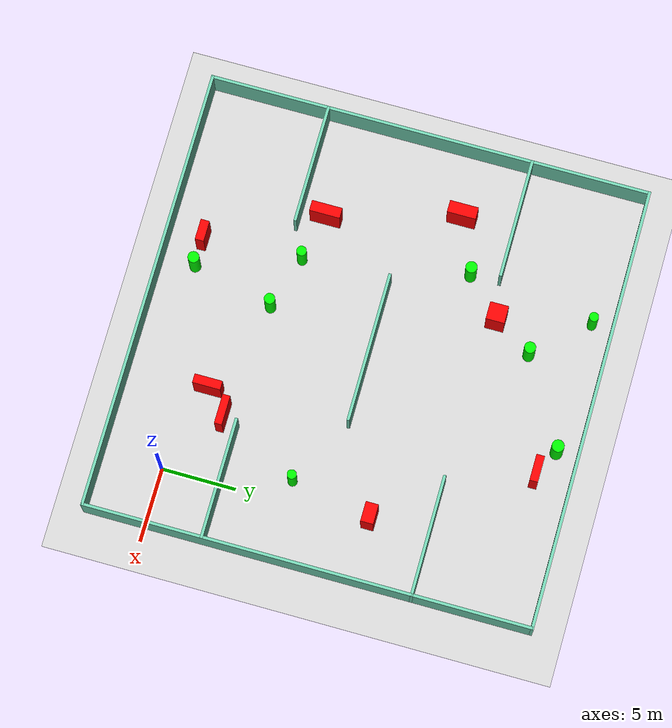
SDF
<sdf version="1.7">
 <world name="default">
  <light name="sun" type="directional">
   <pose>0 0 10 0 -0 0</pose>
   <diffuse>0.8 0.8 0.8 1</diffuse>
   <specular>0.2 0.2 0.2 1</specular>
   <attenuation>
    <range>1000</range>
    <constant>0.9</constant>
    <linear>0.01</linear>
    <quadratic>0.001</quadratic>
   </attenuation>
   <direction>-0.5 0.1 -0.9</direction>
   <spot><inner_angle>0</inner_angle><outer_angle>0</outer_angle><falloff>0</falloff></spot>
  </light>
  <model name="ground_plane">
   <static>1</static>
   <link name="link">
    <collision name="collision">
     <geometry><plane><normal>0 0 1</normal><size>100 100</size></plane></geometry>
     <surface>
      <contact><collide_bitmask>65535</collide_bitmask></contact>
      <friction><ode><mu>100</mu><mu2>50</mu2></ode></friction>
     </surface>
    </collision>
    <visual name="visual">
     <cast_shadows>0</cast_shadows>
     <geometry><plane><normal>0 0 1</normal><size>100 100</size></plane></geometry>
     <material>
      <script><uri>file://media/materials/scripts/gazebo.material</uri><name>Gazebo/Grey</name></script>
     </material>
    </visual>
   </link>
  </model>
  <gravity>0 0 -9.8</gravity>
  <magnetic_field>6e-06 2.3e-05 -4.2e-05</magnetic_field>
  <atmosphere type="adiabatic"/>
  <physics type="ode">
   <max_step_size>0.001</max_step_size>
   <real_time_factor>1</real_time_factor>
   <real_time_update_rate>1000</real_time_update_rate>
  </physics>
  <scene><ambient>0.4 0.4 0.4 1</ambient><background>0.7 0.7 0.7 1</background><shadows>1</shadows></scene>
  <spherical_coordinates>
   <surface_model>EARTH_WGS84</surface_model>
   <latitude_deg>0</latitude_deg>
   <longitude_deg>0</longitude_deg>
   <elevation>0</elevation>
   <heading_deg>0</heading_deg>
  </spherical_coordinates>
  <model name="my_base_walls">
   <link name="Wall_10">
    <collision name="Wall_10_Collision">
     <geometry><box><size>8.2 0.2 2.5</size></box></geometry>
     <pose>0 0 1.25 0 -0 0</pose>
    </collision>
    <visual name="Wall_10_Visual">
     <pose>0 0 1.25 0 -0 0</pose>
     <geometry><box><size>8.2 0.2 2.5</size></box></geometry>
     <material>
      <script><uri>file://media/materials/scripts/gazebo.material</uri><name>Gazebo/Grey</name></script>
      <ambient>0.435294 0.796078 0.67451 1</ambient>
     </material>
     <meta><layer>0</layer></meta>
    </visual>
    <pose>-11 -7 0 0 -0 0</pose>
   </link>
   <link name="Wall_12">
    <collision name="Wall_12_Collision">
     <geometry><box><size>8.2 0.2 2.5</size></box></geometry>
     <pose>0 0 1.25 0 -0 0</pose>
    </collision>
    <visual name="Wall_12_Visual">
     <pose>0 0 1.25 0 -0 0</pose>
     <geometry><box><size>8.2 0.2 2.5</size></box></geometry>
     <material>
      <script><uri>file://media/materials/scripts/gazebo.material</uri><name>Gazebo/Grey</name></script>
      <ambient>0.435294 0.796078 0.67451 1</ambient>
     </material>
     <meta><layer>0</layer></meta>
    </visual>
    <pose>-11 7 0 0 -0 0</pose>
   </link>
   <link name="Wall_14">
    <collision name="Wall_14_Collision">
     <geometry><box><size>8.2 0.2 2.5</size></box></geometry>
     <pose>0 0 1.25 0 -0 0</pose>
    </collision>
    <visual name="Wall_14_Visual">
     <pose>0 0 1.25 0 -0 0</pose>
     <geometry><box><size>8.2 0.2 2.5</size></box></geometry>
     <material>
      <script><uri>file://media/materials/scripts/gazebo.material</uri><name>Gazebo/Grey</name></script>
      <ambient>0.435294 0.796078 0.67451 1</ambient>
     </material>
     <meta><layer>0</layer></meta>
    </visual>
    <pose>11 7 0 0 -0 3.14159</pose>
   </link>
   <link name="Wall_16">
    <collision name="Wall_16_Collision">
     <geometry><box><size>10.2 0.2 2.5</size></box></geometry>
     <pose>0 0 1.25 0 -0 0</pose>
    </collision>
    <visual name="Wall_16_Visual">
     <pose>0 0 1.25 0 -0 0</pose>
     <geometry><box><size>10.2 0.2 2.5</size></box></geometry>
     <material>
      <script><uri>file://media/materials/scripts/gazebo.material</uri><name>Gazebo/Grey</name></script>
      <ambient>0.435294 0.796078 0.67451 1</ambient>
     </material>
     <meta><layer>0</layer></meta>
    </visual>
    <pose>0 0 0 0 -0 3.14159</pose>
   </link>
   <link name="Wall_2">
    <collision name="Wall_2_Collision">
     <geometry><box><size>30.2 0.2 2.5</size></box></geometry>
     <pose>0 0 1.25 0 -0 0</pose>
    </collision>
    <visual name="Wall_2_Visual">
     <pose>0 0 1.25 0 -0 0</pose>
     <geometry><box><size>30.2 0.2 2.5</size></box></geometry>
     <material>
      <script><uri>file://media/materials/scripts/gazebo.material</uri><name>Gazebo/Grey</name></script>
      <ambient>0.435294 0.796078 0.67451 1</ambient>
     </material>
     <meta><layer>0</layer></meta>
    </visual>
    <pose>0 -15 0 0 -0 3.14159</pose>
   </link>
   <link name="Wall_3">
    <collision name="Wall_3_Collision">
     <geometry><box><size>30.2 0.2 2.5</size></box></geometry>
     <pose>0 0 1.25 0 -0 0</pose>
    </collision>
    <visual name="Wall_3_Visual">
     <pose>0 0 1.25 0 -0 0</pose>
     <geometry><box><size>30.2 0.2 2.5</size></box></geometry>
     <material>
      <script><uri>file://media/materials/scripts/gazebo.material</uri><name>Gazebo/Grey</name></script>
      <ambient>0.435294 0.796078 0.67451 1</ambient>
     </material>
     <meta><layer>0</layer></meta>
    </visual>
    <pose>-15 0 0 0 -0 1.5708</pose>
   </link>
   <link name="Wall_4">
    <collision name="Wall_4_Collision">
     <geometry><box><size>30.2 0.2 2.5</size></box></geometry>
     <pose>0 0 1.25 0 -0 0</pose>
    </collision>
    <visual name="Wall_4_Visual">
     <pose>0 0 1.25 0 -0 0</pose>
     <geometry><box><size>30.2 0.2 2.5</size></box></geometry>
     <material>
      <script><uri>file://media/materials/scripts/gazebo.material</uri><name>Gazebo/Grey</name></script>
      <ambient>0.435294 0.796078 0.67451 1</ambient>
     </material>
     <meta><layer>0</layer></meta>
    </visual>
    <pose>0 15 0 0 -0 0</pose>
   </link>
   <link name="Wall_6">
    <collision name="Wall_6_Collision">
     <geometry><box><size>30.2 0.2 2.5</size></box></geometry>
     <pose>0 0 1.25 0 -0 0</pose>
    </collision>
    <visual name="Wall_6_Visual">
     <pose>0 0 1.25 0 -0 0</pose>
     <geometry><box><size>30.2 0.2 2.5</size></box></geometry>
     <material>
      <script><uri>file://media/materials/scripts/gazebo.material</uri><name>Gazebo/Grey</name></script>
      <ambient>0.435294 0.796078 0.67451 1</ambient>
     </material>
     <meta><layer>0</layer></meta>
    </visual>
    <pose>15 0 0 0 -0 1.5708</pose>
   </link>
   <link name="Wall_8">
    <collision name="Wall_8_Collision">
     <geometry><box><size>8.2 0.2 2.5</size></box></geometry>
     <pose>0 0 1.25 0 -0 0</pose>
    </collision>
    <visual name="Wall_8_Visual">
     <pose>0 0 1.25 0 -0 0</pose>
     <geometry><box><size>8.2 0.2 2.5</size></box></geometry>
     <material>
      <script><uri>file://media/materials/scripts/gazebo.material</uri><name>Gazebo/Grey</name></script>
      <ambient>0.435294 0.796078 0.67451 1</ambient>
     </material>
     <meta><layer>0</layer></meta>
    </visual>
    <pose>11 -7 0 0 -0 3.14159</pose>
   </link>
   <static>1</static>
   <pose>-11 11 0 0 -0 0</pose>
  </model>
  <model name="cylinder1">
   <static>1</static>
   <link name="link">
    <inertial>
     <mass>1</mass>
     <inertia><ixx>0.5</ixx><ixy>0</ixy><ixz>0</ixz><iyy>0.5</iyy><iyz>0</iyz><izz>1</izz></inertia>
    </inertial>
    <collision name="collision">
     <geometry><cylinder><radius>0.38342299681047015</radius><length>2.5</length></cylinder></geometry>
    </collision>
    <visual name="visual">
     <geometry><cylinder><radius>0.38342299681047015</radius><length>2.5</length></cylinder></geometry>
     <material>
      <ambient>0 1 0 1</ambient>
      <diffuse>0 1 0 1</diffuse>
      <specular>0.1 0.1 0.1 1</specular>
      <emissive>0 0 0 0</emissive>
     </material>
    </visual>
   </link>
   <pose>-13.726663173123235 -1.731527719059494 1.25 0 0 0</pose>
  </model>
  <model name="cylinder2">
   <static>1</static>
   <link name="link">
    <inertial>
     <mass>1</mass>
     <inertia><ixx>0.5</ixx><ixy>0</ixy><ixz>0</ixz><iyy>0.5</iyy><iyz>0</iyz><izz>1</izz></inertia>
    </inertial>
    <collision name="collision">
     <geometry><cylinder><radius>0.3362957061559153</radius><length>2.5</length></cylinder></geometry>
    </collision>
    <visual name="visual">
     <geometry><cylinder><radius>0.3362957061559153</radius><length>2.5</length></cylinder></geometry>
     <material>
      <ambient>0 1 0 1</ambient>
      <diffuse>0 1 0 1</diffuse>
      <specular>0.1 0.1 0.1 1</specular>
      <emissive>0 0 0 0</emissive>
     </material>
    </visual>
   </link>
   <pose>-16.03520158440289 4.983367881813095 1.25 0 0 0</pose>
  </model>
  <model name="cylinder3">
   <static>1</static>
   <link name="link">
    <inertial>
     <mass>1</mass>
     <inertia><ixx>0.5</ixx><ixy>0</ixy><ixz>0</ixz><iyy>0.5</iyy><iyz>0</iyz><izz>1</izz></inertia>
    </inertial>
    <collision name="collision">
     <geometry><cylinder><radius>0.3148570932559692</radius><length>2.5</length></cylinder></geometry>
    </collision>
    <visual name="visual">
     <geometry><cylinder><radius>0.3148570932559692</radius><length>2.5</length></cylinder></geometry>
     <material>
      <ambient>0 1 0 1</ambient>
      <diffuse>0 1 0 1</diffuse>
      <specular>0.1 0.1 0.1 1</specular>
      <emissive>0 0 0 0</emissive>
     </material>
    </visual>
   </link>
   <pose>-1.492735048812829 8.468460871599113 1.25 0 0 0</pose>
  </model>
  <model name="cylinder4">
   <static>1</static>
   <link name="link">
    <inertial>
     <mass>1</mass>
     <inertia><ixx>0.5</ixx><ixy>0</ixy><ixz>0</ixz><iyy>0.5</iyy><iyz>0</iyz><izz>1</izz></inertia>
    </inertial>
    <collision name="collision">
     <geometry><cylinder><radius>0.38859705004058614</radius><length>2.5</length></cylinder></geometry>
    </collision>
    <visual name="visual">
     <geometry><cylinder><radius>0.38859705004058614</radius><length>2.5</length></cylinder></geometry>
     <material>
      <ambient>0 1 0 1</ambient>
      <diffuse>0 1 0 1</diffuse>
      <specular>0.1 0.1 0.1 1</specular>
      <emissive>0 0 0 0</emissive>
     </material>
    </visual>
   </link>
   <pose>-17.96692470013857 16.018347796483127 1.25 0 0 0</pose>
  </model>
  <model name="cylinder5">
   <static>1</static>
   <link name="link">
    <inertial>
     <mass>1</mass>
     <inertia><ixx>0.5</ixx><ixy>0</ixy><ixz>0</ixz><iyy>0.5</iyy><iyz>0</iyz><izz>1</izz></inertia>
    </inertial>
    <collision name="collision">
     <geometry><cylinder><radius>0.31544827488082566</radius><length>2.5</length></cylinder></geometry>
    </collision>
    <visual name="visual">
     <geometry><cylinder><radius>0.31544827488082566</radius><length>2.5</length></cylinder></geometry>
     <material>
      <ambient>0 1 0 1</ambient>
      <diffuse>0 1 0 1</diffuse>
      <specular>0.1 0.1 0.1 1</specular>
      <emissive>0 0 0 0</emissive>
     </material>
    </visual>
   </link>
   <pose>-16.875334953327954 24.61383834169339 1.25 0 0 0</pose>
  </model>
  <model name="cylinder6">
   <static>1</static>
   <link name="link">
    <inertial>
     <mass>1</mass>
     <inertia><ixx>0.5</ixx><ixy>0</ixy><ixz>0</ixz><iyy>0.5</iyy><iyz>0</iyz><izz>1</izz></inertia>
    </inertial>
    <collision name="collision">
     <geometry><cylinder><radius>0.38582180488945167</radius><length>2.5</length></cylinder></geometry>
    </collision>
    <visual name="visual">
     <geometry><cylinder><radius>0.38582180488945167</radius><length>2.5</length></cylinder></geometry>
     <material>
      <ambient>0 1 0 1</ambient>
      <diffuse>0 1 0 1</diffuse>
      <specular>0.1 0.1 0.1 1</specular>
      <emissive>0 0 0 0</emissive>
     </material>
    </visual>
   </link>
   <pose>-13.767765626467803 21.119128903020602 1.25 0 0 0</pose>
  </model>
  <model name="cylinder7">
   <static>1</static>
   <link name="link">
    <inertial>
     <mass>1</mass>
     <inertia><ixx>0.5</ixx><ixy>0</ixy><ixz>0</ixz><iyy>0.5</iyy><iyz>0</iyz><izz>1</izz></inertia>
    </inertial>
    <collision name="collision">
     <geometry><cylinder><radius>0.41517348012498756</radius><length>2.5</length></cylinder></geometry>
    </collision>
    <visual name="visual">
     <geometry><cylinder><radius>0.41517348012498756</radius><length>2.5</length></cylinder></geometry>
     <material>
      <ambient>0 1 0 1</ambient>
      <diffuse>0 1 0 1</diffuse>
      <specular>0.1 0.1 0.1 1</specular>
      <emissive>0 0 0 0</emissive>
     </material>
    </visual>
   </link>
   <pose>-7.925282922807874 24.550382723225294 1.25 0 0 0</pose>
  </model>
  <model name="cylinder8">
   <static>1</static>
   <link name="link">
    <inertial>
     <mass>1</mass>
     <inertia><ixx>0.5</ixx><ixy>0</ixy><ixz>0</ixz><iyy>0.5</iyy><iyz>0</iyz><izz>1</izz></inertia>
    </inertial>
    <collision name="collision">
     <geometry><cylinder><radius>0.3657788730209634</radius><length>2.5</length></cylinder></geometry>
    </collision>
    <visual name="visual">
     <geometry><cylinder><radius>0.3657788730209634</radius><length>2.5</length></cylinder></geometry>
     <material>
      <ambient>0 1 0 1</ambient>
      <diffuse>0 1 0 1</diffuse>
      <specular>0.1 0.1 0.1 1</specular>
      <emissive>0 0 0 0</emissive>
     </material>
    </visual>
   </link>
   <pose>-12.359460599396733 3.8548930773266736 1.25 0 0 0</pose>
  </model>
  <model name="box1">
   <static>1</static>
   <link name="link">
    <inertial>
     <mass>1</mass>
     <inertia><ixx>0.083</ixx><ixy>0</ixy><ixz>0</ixz><iyy>0.083</iyy><iyz>0</iyz><izz>0.083</izz></inertia>
    </inertial>
    <collision name="collision">
     <geometry><box><size>1.3374968064667048 0.8583906284075151 2.5</size></box></geometry>
    </collision>
    <visual name="visual">
     <geometry><box><size>1.3374968064667048 0.8583906284075151 2.5</size></box></geometry>
     <material>
      <ambient>1 0 0 1</ambient>
      <diffuse>1 0 0 1</diffuse>
      <specular>0.1 0.1 0.1 1</specular>
      <emissive>0 0 0 0</emissive>
     </material>
    </visual>
    <sensor name="my_contact" type="contact">
     <contact><collision>box_collision</collision><topic>__default_topic__</topic></contact>
    </sensor>
   </link>
   <pose>-0.4142153428852424 13.981135752317364 1.25 0 0 0</pose>
  </model>
  <model name="box2">
   <static>1</static>
   <link name="link">
    <inertial>
     <mass>1</mass>
     <inertia><ixx>0.083</ixx><ixy>0</ixy><ixz>0</ixz><iyy>0.083</iyy><iyz>0</iyz><izz>0.083</izz></inertia>
    </inertial>
    <collision name="collision">
     <geometry><box><size>1.7770668148340811 0.5613297769349042 2.5</size></box></geometry>
    </collision>
    <visual name="visual">
     <geometry><box><size>1.7770668148340811 0.5613297769349042 2.5</size></box></geometry>
     <material>
      <ambient>1 0 0 1</ambient>
      <diffuse>1 0 0 1</diffuse>
      <specular>0.1 0.1 0.1 1</specular>
      <emissive>0 0 0 0</emissive>
     </material>
    </visual>
    <sensor name="my_contact" type="contact">
     <contact><collision>box_collision</collision><topic>__default_topic__</topic></contact>
    </sensor>
   </link>
   <pose>-6.147294812122718 23.624706723774096 1.25 0 0 0</pose>
  </model>
  <model name="box3">
   <static>1</static>
   <link name="link">
    <inertial>
     <mass>1</mass>
     <inertia><ixx>0.083</ixx><ixy>0</ixy><ixz>0</ixz><iyy>0.083</iyy><iyz>0</iyz><izz>0.083</izz></inertia>
    </inertial>
    <collision name="collision">
     <geometry><box><size>0.7105036344509157 2.0739274511882764 2.5</size></box></geometry>
    </collision>
    <visual name="visual">
     <geometry><box><size>0.7105036344509157 2.0739274511882764 2.5</size></box></geometry>
     <material>
      <ambient>1 0 0 1</ambient>
      <diffuse>1 0 0 1</diffuse>
      <specular>0.1 0.1 0.1 1</specular>
      <emissive>0 0 0 0</emissive>
     </material>
    </visual>
    <sensor name="my_contact" type="contact">
     <contact><collision>box_collision</collision><topic>__default_topic__</topic></contact>
    </sensor>
   </link>
   <pose>-19.199993401097792 5.752311203913447 1.25 0 0 0</pose>
  </model>
  <model name="box4">
   <static>1</static>
   <link name="link">
    <inertial>
     <mass>1</mass>
     <inertia><ixx>0.083</ixx><ixy>0</ixy><ixz>0</ixz><iyy>0.083</iyy><iyz>0</iyz><izz>0.083</izz></inertia>
    </inertial>
    <collision name="collision">
     <geometry><box><size>0.8151823365817941 1.9500587695311724 2.5</size></box></geometry>
    </collision>
    <visual name="visual">
     <geometry><box><size>0.8151823365817941 1.9500587695311724 2.5</size></box></geometry>
     <material>
      <ambient>1 0 0 1</ambient>
      <diffuse>1 0 0 1</diffuse>
      <specular>0.1 0.1 0.1 1</specular>
      <emissive>0 0 0 0</emissive>
     </material>
    </visual>
    <sensor name="my_contact" type="contact">
     <contact><collision>box_collision</collision><topic>__default_topic__</topic></contact>
    </sensor>
   </link>
   <pose>-21.59590265422463 14.450953065382382 1.25 0 0 0</pose>
  </model>
  <model name="box5">
   <static>1</static>
   <link name="link">
    <inertial>
     <mass>1</mass>
     <inertia><ixx>0.083</ixx><ixy>0</ixy><ixz>0</ixz><iyy>0.083</iyy><iyz>0</iyz><izz>0.083</izz></inertia>
    </inertial>
    <collision name="collision">
     <geometry><box><size>1.9908411688409657 0.5125945736951873 2.5</size></box></geometry>
    </collision>
    <visual name="visual">
     <geometry><box><size>1.9908411688409657 0.5125945736951873 2.5</size></box></geometry>
     <material>
      <ambient>1 0 0 1</ambient>
      <diffuse>1 0 0 1</diffuse>
      <specular>0.1 0.1 0.1 1</specular>
      <emissive>0 0 0 0</emissive>
     </material>
    </visual>
    <sensor name="my_contact" type="contact">
     <contact><collision>box_collision</collision><topic>__default_topic__</topic></contact>
    </sensor>
   </link>
   <pose>-4.40279289509126 2.9467403378130896 1.25 0 0 0</pose>
  </model>
  <model name="box6">
   <static>1</static>
   <link name="link">
    <inertial>
     <mass>1</mass>
     <inertia><ixx>0.083</ixx><ixy>0</ixy><ixz>0</ixz><iyy>0.083</iyy><iyz>0</iyz><izz>0.083</izz></inertia>
    </inertial>
    <collision name="collision">
     <geometry><box><size>0.6017249366535704 1.8844652372211568 2.5</size></box></geometry>
    </collision>
    <visual name="visual">
     <geometry><box><size>0.6017249366535704 1.8844652372211568 2.5</size></box></geometry>
     <material>
      <ambient>1 0 0 1</ambient>
      <diffuse>1 0 0 1</diffuse>
      <specular>0.1 0.1 0.1 1</specular>
      <emissive>0 0 0 0</emissive>
     </material>
    </visual>
    <sensor name="my_contact" type="contact">
     <contact><collision>box_collision</collision><topic>__default_topic__</topic></contact>
    </sensor>
   </link>
   <pose>-5.913144600173837 1.508487005117642 1.25 0 0 0</pose>
  </model>
  <model name="box7">
   <static>1</static>
   <link name="link">
    <inertial>
     <mass>1</mass>
     <inertia><ixx>0.083</ixx><ixy>0</ixy><ixz>0</ixz><iyy>0.083</iyy><iyz>0</iyz><izz>0.083</izz></inertia>
    </inertial>
    <collision name="collision">
     <geometry><box><size>1.190176144525918 1.2594364834129097 2.5</size></box></geometry>
    </collision>
    <visual name="visual">
     <geometry><box><size>1.190176144525918 1.2594364834129097 2.5</size></box></geometry>
     <material>
      <ambient>1 0 0 1</ambient>
      <diffuse>1 0 0 1</diffuse>
      <specular>0.1 0.1 0.1 1</specular>
      <emissive>0 0 0 0</emissive>
     </material>
    </visual>
    <sensor name="my_contact" type="contact">
     <contact><collision>box_collision</collision><topic>__default_topic__</topic></contact>
    </sensor>
   </link>
   <pose>-15.464699751799287 18.45217918071939 1.25 0 0 0</pose>
  </model>
  <model name="box8">
   <static>1</static>
   <link name="link">
    <inertial>
     <mass>1</mass>
     <inertia><ixx>0.083</ixx><ixy>0</ixy><ixz>0</ixz><iyy>0.083</iyy><iyz>0</iyz><izz>0.083</izz></inertia>
    </inertial>
    <collision name="collision">
     <geometry><box><size>1.4114137520537051 0.5952000455941763 2.5</size></box></geometry>
    </collision>
    <visual name="visual">
     <geometry><box><size>1.4114137520537051 0.5952000455941763 2.5</size></box></geometry>
     <material>
      <ambient>1 0 0 1</ambient>
      <diffuse>1 0 0 1</diffuse>
      <specular>0.1 0.1 0.1 1</specular>
      <emissive>0 0 0 0</emissive>
     </material>
    </visual>
    <sensor name="my_contact" type="contact">
     <contact><collision>box_collision</collision><topic>__default_topic__</topic></contact>
    </sensor>
   </link>
   <pose>-15.638566072125855 -1.6905685637225014 1.25 0 0 0</pose>
  </model>
 </world>
</sdf>
